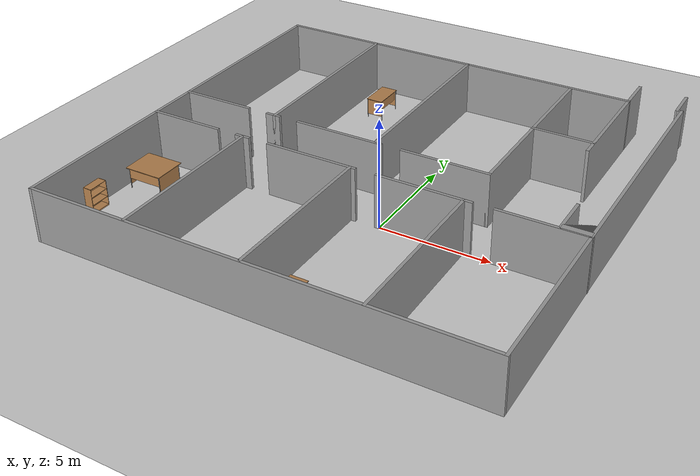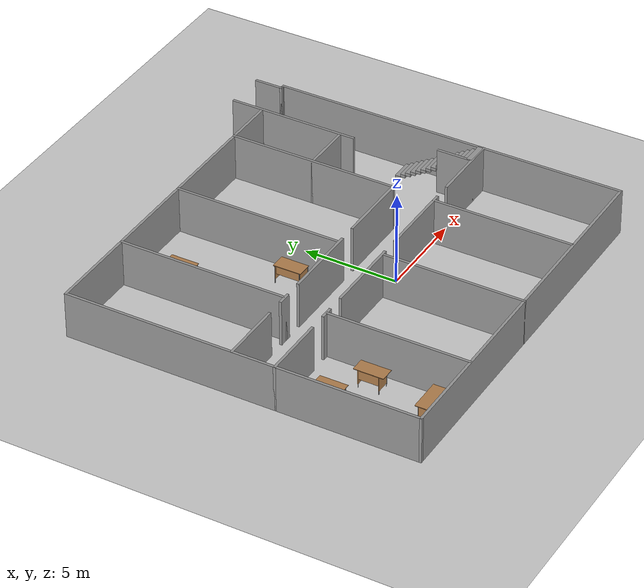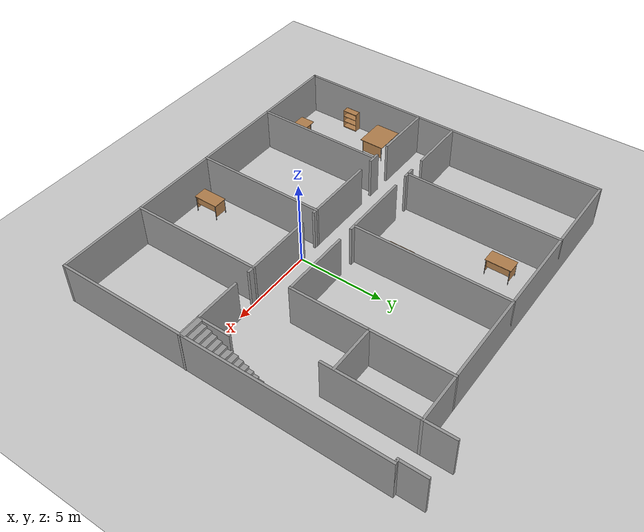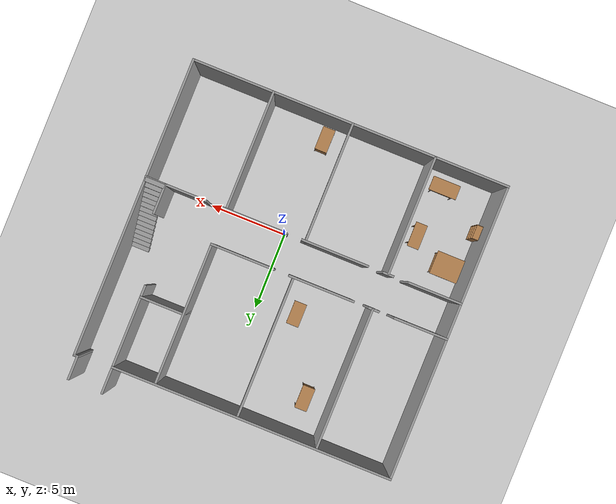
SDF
<sdf version="1.4">
 <world name="default">
  <model name="ground_plane">
   <static>1</static>
   <link name="link">
    <collision name="collision">
     <geometry><plane><normal>0 0 1</normal><size>100 100</size></plane></geometry>
     <surface><friction><ode><mu>100</mu><mu2>50</mu2></ode></friction></surface>
    </collision>
    <visual name="visual">
     <cast_shadows>0</cast_shadows>
     <geometry><plane><normal>0 0 1</normal><size>100 100</size></plane></geometry>
     <material>
      <script><uri>file://media/materials/scripts/gazebo.material</uri><name>Gazebo/Grey</name></script>
     </material>
    </visual>
    <velocity_decay><linear>0</linear><angular>0</angular></velocity_decay>
   </link>
  </model>
  <model name="teknopark">
   <link name="Stairs_0">
    <visual name="Stairs_0_Visual_0">
     <pose>8.265 4.12932 0.083333 0 -0 0</pose>
     <geometry><box><size>1.23 0.284782 0.166668</size></box></geometry>
     <material>
      <script><uri>file://media/materials/scripts/gazebo.material</uri><name>Gazebo/Grey</name></script>
     </material>
    </visual>
    <collision name="Stairs_0_Collision_0">
     <geometry><box><size>1.23 0.284782 0.166668</size></box></geometry>
     <pose>8.265 4.12932 0.083333 0 -0 0</pose>
    </collision>
    <visual name="Stairs_0_Visual_1">
     <pose>8.265 3.84454 0.25 0 -0 0</pose>
     <geometry><box><size>1.23 0.284782 0.166668</size></box></geometry>
     <material>
      <script><uri>file://media/materials/scripts/gazebo.material</uri><name>Gazebo/Grey</name></script>
     </material>
    </visual>
    <collision name="Stairs_0_Collision_1">
     <geometry><box><size>1.23 0.284782 0.166668</size></box></geometry>
     <pose>8.265 3.84454 0.25 0 -0 0</pose>
    </collision>
    <visual name="Stairs_0_Visual_2">
     <pose>8.265 3.55976 0.416667 0 -0 0</pose>
     <geometry><box><size>1.23 0.284782 0.166668</size></box></geometry>
     <material>
      <script><uri>file://media/materials/scripts/gazebo.material</uri><name>Gazebo/Grey</name></script>
     </material>
    </visual>
    <collision name="Stairs_0_Collision_2">
     <geometry><box><size>1.23 0.284782 0.166668</size></box></geometry>
     <pose>8.265 3.55976 0.416667 0 -0 0</pose>
    </collision>
    <visual name="Stairs_0_Visual_3">
     <pose>8.265 3.27498 0.583333 0 -0 0</pose>
     <geometry><box><size>1.23 0.284782 0.166668</size></box></geometry>
     <material>
      <script><uri>file://media/materials/scripts/gazebo.material</uri><name>Gazebo/Grey</name></script>
     </material>
    </visual>
    <collision name="Stairs_0_Collision_3">
     <geometry><box><size>1.23 0.284782 0.166668</size></box></geometry>
     <pose>8.265 3.27498 0.583333 0 -0 0</pose>
    </collision>
    <visual name="Stairs_0_Visual_4">
     <pose>8.265 2.9902 0.75 0 -0 0</pose>
     <geometry><box><size>1.23 0.284782 0.166668</size></box></geometry>
     <material>
      <script><uri>file://media/materials/scripts/gazebo.material</uri><name>Gazebo/Grey</name></script>
     </material>
    </visual>
    <collision name="Stairs_0_Collision_4">
     <geometry><box><size>1.23 0.284782 0.166668</size></box></geometry>
     <pose>8.265 2.9902 0.75 0 -0 0</pose>
    </collision>
    <visual name="Stairs_0_Visual_5">
     <pose>8.265 2.70542 0.916667 0 -0 0</pose>
     <geometry><box><size>1.23 0.284782 0.166668</size></box></geometry>
     <material>
      <script><uri>file://media/materials/scripts/gazebo.material</uri><name>Gazebo/Grey</name></script>
     </material>
    </visual>
    <collision name="Stairs_0_Collision_5">
     <geometry><box><size>1.23 0.284782 0.166668</size></box></geometry>
     <pose>8.265 2.70542 0.916667 0 -0 0</pose>
    </collision>
    <visual name="Stairs_0_Visual_6">
     <pose>8.265 2.42064 1.08333 0 -0 0</pose>
     <geometry><box><size>1.23 0.284782 0.166668</size></box></geometry>
     <material>
      <script><uri>file://media/materials/scripts/gazebo.material</uri><name>Gazebo/Grey</name></script>
     </material>
    </visual>
    <collision name="Stairs_0_Collision_6">
     <geometry><box><size>1.23 0.284782 0.166668</size></box></geometry>
     <pose>8.265 2.42064 1.08333 0 -0 0</pose>
    </collision>
    <visual name="Stairs_0_Visual_7">
     <pose>8.265 2.13586 1.25 0 -0 0</pose>
     <geometry><box><size>1.23 0.284782 0.166668</size></box></geometry>
     <material>
      <script><uri>file://media/materials/scripts/gazebo.material</uri><name>Gazebo/Grey</name></script>
     </material>
    </visual>
    <collision name="Stairs_0_Collision_7">
     <geometry><box><size>1.23 0.284782 0.166668</size></box></geometry>
     <pose>8.265 2.13586 1.25 0 -0 0</pose>
    </collision>
    <visual name="Stairs_0_Visual_8">
     <pose>8.265 1.85108 1.41667 0 -0 0</pose>
     <geometry><box><size>1.23 0.284782 0.166668</size></box></geometry>
     <material>
      <script><uri>file://media/materials/scripts/gazebo.material</uri><name>Gazebo/Grey</name></script>
     </material>
    </visual>
    <collision name="Stairs_0_Collision_8">
     <geometry><box><size>1.23 0.284782 0.166668</size></box></geometry>
     <pose>8.265 1.85108 1.41667 0 -0 0</pose>
    </collision>
    <visual name="Stairs_0_Visual_9">
     <pose>8.265 1.56629 1.58333 0 -0 0</pose>
     <geometry><box><size>1.23 0.284782 0.166668</size></box></geometry>
     <material>
      <script><uri>file://media/materials/scripts/gazebo.material</uri><name>Gazebo/Grey</name></script>
     </material>
    </visual>
    <collision name="Stairs_0_Collision_9">
     <geometry><box><size>1.23 0.284782 0.166668</size></box></geometry>
     <pose>8.265 1.56629 1.58333 0 -0 0</pose>
    </collision>
    <visual name="Stairs_0_Visual_10">
     <pose>8.265 1.28151 1.75 0 -0 0</pose>
     <geometry><box><size>1.23 0.284782 0.166668</size></box></geometry>
     <material>
      <script><uri>file://media/materials/scripts/gazebo.material</uri><name>Gazebo/Grey</name></script>
     </material>
    </visual>
    <collision name="Stairs_0_Collision_10">
     <geometry><box><size>1.23 0.284782 0.166668</size></box></geometry>
     <pose>8.265 1.28151 1.75 0 -0 0</pose>
    </collision>
    <visual name="Stairs_0_Visual_11">
     <pose>8.265 0.996734 1.91667 0 -0 0</pose>
     <geometry><box><size>1.23 0.284782 0.166668</size></box></geometry>
     <material>
      <script><uri>file://media/materials/scripts/gazebo.material</uri><name>Gazebo/Grey</name></script>
     </material>
    </visual>
    <collision name="Stairs_0_Collision_11">
     <geometry><box><size>1.23 0.284782 0.166668</size></box></geometry>
     <pose>8.265 0.996734 1.91667 0 -0 0</pose>
    </collision>
    <visual name="Stairs_0_Visual_12">
     <pose>8.265 0.711953 2.08333 0 -0 0</pose>
     <geometry><box><size>1.23 0.284782 0.166668</size></box></geometry>
     <material>
      <script><uri>file://media/materials/scripts/gazebo.material</uri><name>Gazebo/Grey</name></script>
     </material>
    </visual>
    <collision name="Stairs_0_Collision_12">
     <geometry><box><size>1.23 0.284782 0.166668</size></box></geometry>
     <pose>8.265 0.711953 2.08333 0 -0 0</pose>
    </collision>
    <visual name="Stairs_0_Visual_13">
     <pose>8.265 0.427173 2.25 0 -0 0</pose>
     <geometry><box><size>1.23 0.284782 0.166668</size></box></geometry>
     <material>
      <script><uri>file://media/materials/scripts/gazebo.material</uri><name>Gazebo/Grey</name></script>
     </material>
    </visual>
    <collision name="Stairs_0_Collision_13">
     <geometry><box><size>1.23 0.284782 0.166668</size></box></geometry>
     <pose>8.265 0.427173 2.25 0 -0 0</pose>
    </collision>
    <visual name="Stairs_0_Visual_14">
     <pose>8.265 0.142392 2.41667 0 -0 0</pose>
     <geometry><box><size>1.23 0.284782 0.166668</size></box></geometry>
     <material>
      <script><uri>file://media/materials/scripts/gazebo.material</uri><name>Gazebo/Grey</name></script>
     </material>
    </visual>
    <collision name="Stairs_0_Collision_14">
     <geometry><box><size>1.23 0.284782 0.166668</size></box></geometry>
     <pose>8.265 0.142392 2.41667 0 -0 0</pose>
    </collision>
    <velocity_decay><linear>0</linear><angular>0</angular></velocity_decay>
   </link>
   <link name="Wall_0">
    <collision name="Wall_0_Collision">
     <geometry><box><size>1.57 0.14 2.5</size></box></geometry>
     <pose>0 0 1.25 0 -0 0</pose>
    </collision>
    <visual name="Wall_0_Visual">
     <pose>0 0 1.25 0 -0 0</pose>
     <geometry><box><size>1.57 0.14 2.5</size></box></geometry>
     <material>
      <script><uri>file://media/materials/scripts/gazebo.material</uri><name>Gazebo/Grey</name></script>
     </material>
    </visual>
    <velocity_decay><linear>0</linear><angular>0</angular></velocity_decay>
    <pose>8.67 12.175 0 0 -0 1.5708</pose>
   </link>
   <link name="Wall_10">
    <collision name="Wall_10_Collision">
     <geometry><box><size>3.48 0.14 2.5</size></box></geometry>
     <pose>0 0 1.25 0 -0 0</pose>
    </collision>
    <visual name="Wall_10_Visual">
     <pose>0 0 1.25 0 -0 0</pose>
     <geometry><box><size>3.48 0.14 2.5</size></box></geometry>
     <material>
      <script><uri>file://media/materials/scripts/gazebo.material</uri><name>Gazebo/Grey</name></script>
     </material>
    </visual>
    <velocity_decay><linear>0</linear><angular>0</angular></velocity_decay>
    <pose>-9.69 0 0 0 -0 0</pose>
   </link>
   <link name="Wall_12">
    <collision name="Wall_12_Collision">
     <geometry><box><size>0.72 0.14 2.5</size></box></geometry>
     <pose>0 0 1.25 0 -0 0</pose>
    </collision>
    <visual name="Wall_12_Visual">
     <pose>0 0 1.25 0 -0 0</pose>
     <geometry><box><size>0.72 0.14 2.5</size></box></geometry>
     <material>
      <script><uri>file://media/materials/scripts/gazebo.material</uri><name>Gazebo/Grey</name></script>
     </material>
    </visual>
    <velocity_decay><linear>0</linear><angular>0</angular></velocity_decay>
    <pose>-6.69 0 0 0 -0 0</pose>
   </link>
   <link name="Wall_16">
    <collision name="Wall_16_Collision">
     <geometry><box><size>4.33 0.14 2.5</size></box></geometry>
     <pose>0 0 1.25 0 -0 0</pose>
    </collision>
    <visual name="Wall_16_Visual">
     <pose>0 0 1.25 0 -0 0</pose>
     <geometry><box><size>4.33 0.14 2.5</size></box></geometry>
     <material>
      <script><uri>file://media/materials/scripts/gazebo.material</uri><name>Gazebo/Grey</name></script>
     </material>
    </visual>
    <velocity_decay><linear>0</linear><angular>0</angular></velocity_decay>
    <pose>-3.265 0 0 0 -0 0</pose>
   </link>
   <link name="Wall_18">
    <collision name="Wall_18_Collision">
     <geometry><box><size>7.561 0.14 2.5</size></box></geometry>
     <pose>0 0 1.25 0 -0 0</pose>
    </collision>
    <visual name="Wall_18_Visual">
     <pose>0 0 1.25 0 -0 0</pose>
     <geometry><box><size>7.561 0.14 2.5</size></box></geometry>
     <material>
      <script><uri>file://media/materials/scripts/gazebo.material</uri><name>Gazebo/Grey</name></script>
     </material>
    </visual>
    <velocity_decay><linear>0</linear><angular>0</angular></velocity_decay>
    <pose>-6.687 -3.7695 0 0 0 -1.5708</pose>
   </link>
   <link name="Wall_2">
    <collision name="Wall_2_Collision">
     <geometry><box><size>0.35 0.14 2.5</size></box></geometry>
     <pose>0 0 1.25 0 -0 0</pose>
    </collision>
    <visual name="Wall_2_Visual">
     <pose>0 0 1.25 0 -0 0</pose>
     <geometry><box><size>0.35 0.14 2.5</size></box></geometry>
     <material>
      <script><uri>file://media/materials/scripts/gazebo.material</uri><name>Gazebo/Grey</name></script>
     </material>
    </visual>
    <velocity_decay><linear>0</linear><angular>0</angular></velocity_decay>
    <pose>8.775 11.46 0 0 -0 0</pose>
   </link>
   <link name="Wall_22">
    <collision name="Wall_22_Collision">
     <geometry><box><size>4.32 0.14 2.5</size></box></geometry>
     <pose>0 0 1.25 0 -0 0</pose>
    </collision>
    <visual name="Wall_22_Visual">
     <pose>0 0 1.25 0 -0 0</pose>
     <geometry><box><size>4.32 0.14 2.5</size></box></geometry>
     <material>
      <script><uri>file://media/materials/scripts/gazebo.material</uri><name>Gazebo/Grey</name></script>
     </material>
    </visual>
    <velocity_decay><linear>0</linear><angular>0</angular></velocity_decay>
    <pose>1.96 0 0 0 -0 0</pose>
   </link>
   <link name="Wall_24">
    <collision name="Wall_24_Collision">
     <geometry><box><size>3.971 0.14 2.5</size></box></geometry>
     <pose>0 0 1.25 0 -0 0</pose>
    </collision>
    <visual name="Wall_24_Visual">
     <pose>0 0 1.25 0 -0 0</pose>
     <geometry><box><size>3.971 0.14 2.5</size></box></geometry>
     <material>
      <script><uri>file://media/materials/scripts/gazebo.material</uri><name>Gazebo/Grey</name></script>
     </material>
    </visual>
    <velocity_decay><linear>0</linear><angular>0</angular></velocity_decay>
    <pose>6.9785 0 0 0 -0 0</pose>
   </link>
   <link name="Wall_26">
    <collision name="Wall_26_Collision">
     <geometry><box><size>1.97 0.14 2.5</size></box></geometry>
     <pose>0 0 1.25 0 -0 0</pose>
    </collision>
    <visual name="Wall_26_Visual">
     <pose>0 0 1.25 0 -0 0</pose>
     <geometry><box><size>1.97 0.14 2.5</size></box></geometry>
     <material>
      <script><uri>file://media/materials/scripts/gazebo.material</uri><name>Gazebo/Grey</name></script>
     </material>
    </visual>
    <velocity_decay><linear>0</linear><angular>0</angular></velocity_decay>
    <pose>7.65 0.915 0 0 -0 1.5708</pose>
   </link>
   <link name="Wall_28">
    <collision name="Wall_28_Collision">
     <geometry><box><size>7.67 0.14 2.5</size></box></geometry>
     <pose>0 0 1.25 0 -0 0</pose>
    </collision>
    <visual name="Wall_28_Visual">
     <pose>0 0 1.25 0 -0 0</pose>
     <geometry><box><size>7.67 0.14 2.5</size></box></geometry>
     <material>
      <script><uri>file://media/materials/scripts/gazebo.material</uri><name>Gazebo/Grey</name></script>
     </material>
    </visual>
    <velocity_decay><linear>0</linear><angular>0</angular></velocity_decay>
    <pose>-1.37 -3.765 0 0 0 -1.5708</pose>
   </link>
   <link name="Wall_30">
    <collision name="Wall_30_Collision">
     <geometry><box><size>7.67 0.14 2.5</size></box></geometry>
     <pose>0 0 1.25 0 -0 0</pose>
    </collision>
    <visual name="Wall_30_Visual">
     <pose>0 0 1.25 0 -0 0</pose>
     <geometry><box><size>7.67 0.14 2.5</size></box></geometry>
     <material>
      <script><uri>file://media/materials/scripts/gazebo.material</uri><name>Gazebo/Grey</name></script>
     </material>
    </visual>
    <velocity_decay><linear>0</linear><angular>0</angular></velocity_decay>
    <pose>3.73 -3.765 0 0 0 -1.5708</pose>
   </link>
   <link name="Wall_32">
    <collision name="Wall_32_Collision">
     <geometry><box><size>18 0.14 2.5</size></box></geometry>
     <pose>0 0 1.25 0 -0 0</pose>
    </collision>
    <visual name="Wall_32_Visual">
     <pose>0 0 1.25 0 -0 0</pose>
     <geometry><box><size>18 0.14 2.5</size></box></geometry>
     <material>
      <script><uri>file://media/materials/scripts/gazebo.material</uri><name>Gazebo/Grey</name></script>
     </material>
    </visual>
    <velocity_decay><linear>0</linear><angular>0</angular></velocity_decay>
    <pose>-2.43 11.28 0 0 -0 0</pose>
   </link>
   <link name="Wall_34">
    <collision name="Wall_34_Collision">
     <geometry><box><size>3.467 0.14 2.5</size></box></geometry>
     <pose>0 0 1.25 0 -0 0</pose>
    </collision>
    <visual name="Wall_34_Visual">
     <pose>0 0 1.25 0 -0 0</pose>
     <geometry><box><size>3.467 0.14 2.5</size></box></geometry>
     <material>
      <script><uri>file://media/materials/scripts/gazebo.material</uri><name>Gazebo/Grey</name></script>
     </material>
    </visual>
    <velocity_decay><linear>0</linear><angular>0</angular></velocity_decay>
    <pose>-9.6965 2.273 0 0 -0 0</pose>
   </link>
   <link name="Wall_38">
    <collision name="Wall_38_Collision">
     <geometry><box><size>0.72 0.14 2.5</size></box></geometry>
     <pose>0 0 1.25 0 -0 0</pose>
    </collision>
    <visual name="Wall_38_Visual">
     <pose>0 0 1.25 0 -0 0</pose>
     <geometry><box><size>0.72 0.14 2.5</size></box></geometry>
     <material>
      <script><uri>file://media/materials/scripts/gazebo.material</uri><name>Gazebo/Grey</name></script>
     </material>
    </visual>
    <velocity_decay><linear>0</linear><angular>0</angular></velocity_decay>
    <pose>-6.68 2.273 0 0 -0 0</pose>
   </link>
   <link name="Wall_4">
    <collision name="Wall_4_Collision">
     <geometry><box><size>19.13 0.14 2.5</size></box></geometry>
     <pose>0 0 1.25 0 -0 0</pose>
    </collision>
    <visual name="Wall_4_Visual">
     <pose>0 0 1.25 0 -0 0</pose>
     <geometry><box><size>19.13 0.14 2.5</size></box></geometry>
     <material>
      <script><uri>file://media/materials/scripts/gazebo.material</uri><name>Gazebo/Grey</name></script>
     </material>
    </visual>
    <velocity_decay><linear>0</linear><angular>0</angular></velocity_decay>
    <pose>8.88 1.965 0 0 0 -1.5708</pose>
   </link>
   <link name="Wall_40">
    <collision name="Wall_40_Collision">
     <geometry><box><size>4.23 0.14 2.5</size></box></geometry>
     <pose>0 0 1.25 0 -0 0</pose>
    </collision>
    <visual name="Wall_40_Visual">
     <pose>0 0 1.25 0 -0 0</pose>
     <geometry><box><size>4.23 0.14 2.5</size></box></geometry>
     <material>
      <script><uri>file://media/materials/scripts/gazebo.material</uri><name>Gazebo/Grey</name></script>
     </material>
    </visual>
    <velocity_decay><linear>0</linear><angular>0</angular></velocity_decay>
    <pose>-3.305 2.273 0 0 -0 0</pose>
   </link>
   <link name="Wall_42">
    <collision name="Wall_42_Collision">
     <geometry><box><size>4.12 0.14 2.5</size></box></geometry>
     <pose>0 0 1.25 0 -0 0</pose>
    </collision>
    <visual name="Wall_42_Visual">
     <pose>0 0 1.25 0 -0 0</pose>
     <geometry><box><size>4.12 0.14 2.5</size></box></geometry>
     <material>
      <script><uri>file://media/materials/scripts/gazebo.material</uri><name>Gazebo/Grey</name></script>
     </material>
    </visual>
    <velocity_decay><linear>0</linear><angular>0</angular></velocity_decay>
    <pose>1.77 2.273 0 0 -0 0</pose>
   </link>
   <link name="Wall_44">
    <collision name="Wall_44_Collision">
     <geometry><box><size>9.147 0.14 2.5</size></box></geometry>
     <pose>0 0 1.25 0 -0 0</pose>
    </collision>
    <visual name="Wall_44_Visual">
     <pose>0 0 1.25 0 -0 0</pose>
     <geometry><box><size>9.147 0.14 2.5</size></box></geometry>
     <material>
      <script><uri>file://media/materials/scripts/gazebo.material</uri><name>Gazebo/Grey</name></script>
     </material>
    </visual>
    <velocity_decay><linear>0</linear><angular>0</angular></velocity_decay>
    <pose>3.76 6.7765 0 0 -0 1.5708</pose>
   </link>
   <link name="Wall_46">
    <collision name="Wall_46_Collision">
     <geometry><box><size>2.88 0.14 2.5</size></box></geometry>
     <pose>0 0 1.25 0 -0 0</pose>
    </collision>
    <visual name="Wall_46_Visual">
     <pose>0 0 1.25 0 -0 0</pose>
     <geometry><box><size>2.88 0.14 2.5</size></box></geometry>
     <material>
      <script><uri>file://media/materials/scripts/gazebo.material</uri><name>Gazebo/Grey</name></script>
     </material>
    </visual>
    <velocity_decay><linear>0</linear><angular>0</angular></velocity_decay>
    <pose>5.13 6.77 0 0 -0 0</pose>
   </link>
   <link name="Wall_48">
    <collision name="Wall_48_Collision">
     <geometry><box><size>7.003 0.14 2.5</size></box></geometry>
     <pose>0 0 1.25 0 -0 0</pose>
    </collision>
    <visual name="Wall_48_Visual">
     <pose>0 0 1.25 0 -0 0</pose>
     <geometry><box><size>7.003 0.14 2.5</size></box></geometry>
     <material>
      <script><uri>file://media/materials/scripts/gazebo.material</uri><name>Gazebo/Grey</name></script>
     </material>
    </visual>
    <velocity_decay><linear>0</linear><angular>0</angular></velocity_decay>
    <pose>6.5 9.5015 0 0 -0 1.5708</pose>
   </link>
   <link name="Wall_50">
    <collision name="Wall_50_Collision">
     <geometry><box><size>9.147 0.14 2.5</size></box></geometry>
     <pose>0 0 1.25 0 -0 0</pose>
    </collision>
    <visual name="Wall_50_Visual">
     <pose>0 0 1.25 0 -0 0</pose>
     <geometry><box><size>9.147 0.14 2.5</size></box></geometry>
     <material>
      <script><uri>file://media/materials/scripts/gazebo.material</uri><name>Gazebo/Grey</name></script>
     </material>
    </visual>
    <velocity_decay><linear>0</linear><angular>0</angular></velocity_decay>
    <pose>-6.6 6.7765 0 0 -0 1.5708</pose>
   </link>
   <link name="Wall_52">
    <collision name="Wall_52_Collision">
     <geometry><box><size>9.147 0.14 2.5</size></box></geometry>
     <pose>0 0 1.25 0 -0 0</pose>
    </collision>
    <visual name="Wall_52_Visual">
     <pose>0 0 1.25 0 -0 0</pose>
     <geometry><box><size>9.147 0.14 2.5</size></box></geometry>
     <material>
      <script><uri>file://media/materials/scripts/gazebo.material</uri><name>Gazebo/Grey</name></script>
     </material>
    </visual>
    <velocity_decay><linear>0</linear><angular>0</angular></velocity_decay>
    <pose>-1.52 6.7765 0 0 -0 1.5708</pose>
   </link>
   <link name="Wall_6">
    <collision name="Wall_6_Collision">
     <geometry><box><size>20.38 0.14 2.5</size></box></geometry>
     <pose>0 0 1.25 0 -0 0</pose>
    </collision>
    <visual name="Wall_6_Visual">
     <pose>0 0 1.25 0 -0 0</pose>
     <geometry><box><size>20.38 0.14 2.5</size></box></geometry>
     <material>
      <script><uri>file://media/materials/scripts/gazebo.material</uri><name>Gazebo/Grey</name></script>
     </material>
    </visual>
    <velocity_decay><linear>0</linear><angular>0</angular></velocity_decay>
    <pose>-1.24 -7.53 0 0 -0 3.14159</pose>
   </link>
   <link name="Wall_8">
    <collision name="Wall_8_Collision">
     <geometry><box><size>18.95 0.14 2.5</size></box></geometry>
     <pose>0 0 1.25 0 -0 0</pose>
    </collision>
    <visual name="Wall_8_Visual">
     <pose>0 0 1.25 0 -0 0</pose>
     <geometry><box><size>18.95 0.14 2.5</size></box></geometry>
     <material>
      <script><uri>file://media/materials/scripts/gazebo.material</uri><name>Gazebo/Grey</name></script>
     </material>
    </visual>
    <velocity_decay><linear>0</linear><angular>0</angular></velocity_decay>
    <pose>-11.36 1.875 0 0 -0 1.5708</pose>
   </link>
   <static>1</static>
  </model>
  <model name="table_0">
   <static>1</static>
   <link name="link">
    <collision name="surface">
     <pose>0 0 1 0 -0 0</pose>
     <geometry><box><size>1.5 0.8 0.03</size></box></geometry>
    </collision>
    <visual name="visual1">
     <pose>0 0 1 0 -0 0</pose>
     <geometry><box><size>1.5 0.8 0.03</size></box></geometry>
     <material>
      <script><uri>file://media/materials/scripts/gazebo.material</uri><name>Gazebo/Wood</name></script>
     </material>
    </visual>
    <collision name="surface_1">
     <pose>0 -0.3 0.74 1.57 0 1.57</pose>
     <geometry><box><size>0.03 0.5 1.3</size></box></geometry>
    </collision>
    <visual name="visual_1">
     <pose>0 -0.3 0.74 1.57 0 1.57</pose>
     <geometry><box><size>0.03 0.5 1.3</size></box></geometry>
     <material>
      <script><uri>file://media/materials/scripts/gazebo.material</uri><name>Gazebo/Wood</name></script>
     </material>
    </visual>
    <collision name="surface_2">
     <pose>-0.68 0 0.6 0 0 0</pose>
     <geometry><box><size>0.03 0.75 0.8</size></box></geometry>
    </collision>
    <visual name="visual_2">
     <pose>-0.68 0 0.6 0 0 0</pose>
     <geometry><box><size>0.03 0.75 0.8</size></box></geometry>
     <material>
      <script><uri>file://media/materials/scripts/gazebo.material</uri><name>Gazebo/Wood</name></script>
     </material>
    </visual>
    <collision name="surface_3">
     <pose>0.68 0 0.6 0 0 0</pose>
     <geometry><box><size>0.03 0.75 0.8</size></box></geometry>
    </collision>
    <visual name="visual_3">
     <pose>0.68 0 0.6 0 0 0</pose>
     <geometry><box><size>0.03 0.75 0.8</size></box></geometry>
     <material>
      <script><uri>file://media/materials/scripts/gazebo.material</uri><name>Gazebo/Wood</name></script>
     </material>
    </visual>
    <collision name="front_left_leg">
     <pose>0.68 0.38 0.5 0 -0 0</pose>
     <geometry><cylinder><radius>0.02</radius><length>1</length></cylinder></geometry>
    </collision>
    <visual name="front_left_leg">
     <pose>0.68 0.38 0.5 0 -0 0</pose>
     <geometry><cylinder><radius>0.02</radius><length>1</length></cylinder></geometry>
     <material>
      <script><uri>file://media/materials/scripts/gazebo.material</uri><name>Gazebo/Grey</name></script>
     </material>
    </visual>
    <collision name="front_right_leg">
     <pose>0.68 -0.38 0.5 0 -0 0</pose>
     <geometry><cylinder><radius>0.02</radius><length>1</length></cylinder></geometry>
    </collision>
    <visual name="front_right_leg">
     <pose>0.68 -0.38 0.5 0 -0 0</pose>
     <geometry><cylinder><radius>0.02</radius><length>1</length></cylinder></geometry>
     <material>
      <script><uri>file://media/materials/scripts/gazebo.material</uri><name>Gazebo/Grey</name></script>
     </material>
    </visual>
    <collision name="back_right_leg">
     <pose>-0.68 -0.38 0.5 0 -0 0</pose>
     <geometry><cylinder><radius>0.02</radius><length>1</length></cylinder></geometry>
    </collision>
    <visual name="back_right_leg">
     <pose>-0.68 -0.38 0.5 0 -0 0</pose>
     <geometry><cylinder><radius>0.02</radius><length>1</length></cylinder></geometry>
     <material>
      <script><uri>file://media/materials/scripts/gazebo.material</uri><name>Gazebo/Grey</name></script>
     </material>
    </visual>
    <collision name="back_left_leg">
     <pose>-0.68 0.38 0.5 0 -0 0</pose>
     <geometry><cylinder><radius>0.02</radius><length>1</length></cylinder></geometry>
    </collision>
    <visual name="back_left_leg">
     <pose>-0.68 0.38 0.5 0 -0 0</pose>
     <geometry><cylinder><radius>0.02</radius><length>1</length></cylinder></geometry>
     <material>
      <script><uri>file://media/materials/scripts/gazebo.material</uri><name>Gazebo/Grey</name></script>
     </material>
    </visual>
    <velocity_decay><linear>0</linear><angular>0</angular></velocity_decay>
   </link>
   <pose>-0.14 -6.398 0 0 -0 1.57</pose>
  </model>
  <model name="table_2">
   <static>1</static>
   <link name="link">
    <collision name="surface">
     <pose>0 0 1 0 -0 0</pose>
     <geometry><box><size>1.8 1.5 0.03</size></box></geometry>
    </collision>
    <visual name="visual1">
     <pose>0 0 1 0 -0 0</pose>
     <geometry><box><size>1.8 1.5 0.03</size></box></geometry>
     <material>
      <script><uri>file://media/materials/scripts/gazebo.material</uri><name>Gazebo/Wood</name></script>
     </material>
    </visual>
    <collision name="surface_1">
     <pose>0 -0.65 0.74 1.57 0 1.57</pose>
     <geometry><box><size>.03 0.5 1.6</size></box></geometry>
    </collision>
    <visual name="visual_1">
     <pose>0 -0.65 0.74 1.57 0 1.57</pose>
     <geometry><box><size>0.03 0.5 1.6</size></box></geometry>
     <material>
      <script><uri>file://media/materials/scripts/gazebo.material</uri><name>Gazebo/Wood</name></script>
     </material>
    </visual>
    <collision name="surface_2">
     <pose>-0.8 0 0.6 0 0 0</pose>
     <geometry><box><size>0.03 1.3 0.8</size></box></geometry>
    </collision>
    <visual name="visual_2">
     <pose>-0.8 0 0.6 0 0 0</pose>
     <geometry><box><size>0.03 1.3 0.8</size></box></geometry>
     <material>
      <script><uri>file://media/materials/scripts/gazebo.material</uri><name>Gazebo/Wood</name></script>
     </material>
    </visual>
    <collision name="surface_3">
     <pose>0.8 0 0.6 0 0 0</pose>
     <geometry><box><size>0.03 1.3 0.8</size></box></geometry>
    </collision>
    <visual name="visual_3">
     <pose>0.8 0 0.6 0 0 0</pose>
     <geometry><box><size>0.03 1.3 0.8</size></box></geometry>
     <material>
      <script><uri>file://media/materials/scripts/gazebo.material</uri><name>Gazebo/Wood</name></script>
     </material>
    </visual>
    <collision name="front_left_leg">
     <pose>0.8 0.65 0.5 0 -0 0</pose>
     <geometry><cylinder><radius>0.02</radius><length>1</length></cylinder></geometry>
    </collision>
    <visual name="front_left_leg">
     <pose>0.8 0.65 0.5 0 -0 0</pose>
     <geometry><cylinder><radius>0.02</radius><length>1</length></cylinder></geometry>
     <material>
      <script><uri>file://media/materials/scripts/gazebo.material</uri><name>Gazebo/Grey</name></script>
     </material>
    </visual>
    <collision name="front_right_leg">
     <pose>0.8 -0.65 0.5 0 -0 0</pose>
     <geometry><cylinder><radius>0.02</radius><length>1</length></cylinder></geometry>
    </collision>
    <visual name="front_right_leg">
     <pose>0.8 -0.65 0.5 0 -0 0</pose>
     <geometry><cylinder><radius>0.02</radius><length>1</length></cylinder></geometry>
     <material>
      <script><uri>file://media/materials/scripts/gazebo.material</uri><name>Gazebo/Grey</name></script>
     </material>
    </visual>
    <collision name="back_right_leg">
     <pose>-0.8 -0.65 0.5 0 -0 0</pose>
     <geometry><cylinder><radius>0.02</radius><length>1</length></cylinder></geometry>
    </collision>
    <visual name="back_right_leg">
     <pose>-0.8 -0.65 0.5 0 -0 0</pose>
     <geometry><cylinder><radius>0.02</radius><length>1</length></cylinder></geometry>
     <material>
      <script><uri>file://media/materials/scripts/gazebo.material</uri><name>Gazebo/Grey</name></script>
     </material>
    </visual>
    <collision name="back_left_leg">
     <pose>-0.8 0.65 0.5 0 -0 0</pose>
     <geometry><cylinder><radius>0.02</radius><length>1</length></cylinder></geometry>
    </collision>
    <visual name="back_left_leg">
     <pose>-0.8 0.65 0.5 0 -0 0</pose>
     <geometry><cylinder><radius>0.02</radius><length>1</length></cylinder></geometry>
     <material>
      <script><uri>file://media/materials/scripts/gazebo.material</uri><name>Gazebo/Grey</name></script>
     </material>
    </visual>
    <velocity_decay><linear>0</linear><angular>0</angular></velocity_decay>
   </link>
   <pose>-10.16 -1.88 0 0 -0 0</pose>
  </model>
  <model name="table_3">
   <static>1</static>
   <link name="link">
    <collision name="surface">
     <pose>0 0 1 0 0 0</pose>
     <geometry><box><size>1.6 0.75 0.03</size></box></geometry>
    </collision>
    <visual name="visual1">
     <pose>0 0 1 0 -0 0</pose>
     <geometry><box><size>1.6 0.75 0.03</size></box></geometry>
     <material>
      <script><uri>file://media/materials/scripts/gazebo.material</uri><name>Gazebo/Wood</name></script>
     </material>
    </visual>
    <collision name="surface_1">
     <pose>0 -0.35 0.74 1.57 0 1.57</pose>
     <geometry><box><size>0.03 0.5 1.1</size></box></geometry>
    </collision>
    <visual name="visual_1">
     <pose>0 -0.35 0.74 1.57 0 1.57</pose>
     <geometry><box><size>0.03 0.5 1.1</size></box></geometry>
     <material>
      <script><uri>file://media/materials/scripts/gazebo.material</uri><name>Gazebo/Wood</name></script>
     </material>
    </visual>
    <collision name="surface_2">
     <pose>-0.55 0 0.6 0 0 0</pose>
     <geometry><box><size>0.03 0.75 0.8</size></box></geometry>
    </collision>
    <visual name="visual_2">
     <pose>-0.55 0 0.6 0 0 0</pose>
     <geometry><box><size>0.03 0.75 0.8</size></box></geometry>
     <material>
      <script><uri>file://media/materials/scripts/gazebo.material</uri><name>Gazebo/Wood</name></script>
     </material>
    </visual>
    <collision name="surface_3">
     <pose>0.55 0 0.6 0 0 0</pose>
     <geometry><box><size>0.03 0.75 0.8</size></box></geometry>
    </collision>
    <visual name="visual_3">
     <pose>0.55 0 0.6 0 0 0</pose>
     <geometry><box><size>0.03 0.75 0.8</size></box></geometry>
     <material>
      <script><uri>file://media/materials/scripts/gazebo.material</uri><name>Gazebo/Wood</name></script>
     </material>
    </visual>
    <collision name="front_left_leg">
     <pose>0.55 0.35 0.5 0 -0 0</pose>
     <geometry><cylinder><radius>0.02</radius><length>1</length></cylinder></geometry>
    </collision>
    <visual name="front_left_leg">
     <pose>0.55 0.35 0.5 0 -0 0</pose>
     <geometry><cylinder><radius>0.02</radius><length>1</length></cylinder></geometry>
     <material>
      <script><uri>file://media/materials/scripts/gazebo.material</uri><name>Gazebo/Grey</name></script>
     </material>
    </visual>
    <collision name="front_right_leg">
     <pose>0.55 -0.35 0.5 0 -0 0</pose>
     <geometry><cylinder><radius>0.02</radius><length>1</length></cylinder></geometry>
    </collision>
    <visual name="front_right_leg">
     <pose>0.55 -0.35 0.5 0 -0 0</pose>
     <geometry><cylinder><radius>0.02</radius><length>1</length></cylinder></geometry>
     <material>
      <script><uri>file://media/materials/scripts/gazebo.material</uri><name>Gazebo/Grey</name></script>
     </material>
    </visual>
    <collision name="back_right_leg">
     <pose>-0.55 -0.35 0.5 0 -0 0</pose>
     <geometry><cylinder><radius>0.02</radius><length>1</length></cylinder></geometry>
    </collision>
    <visual name="back_right_leg">
     <pose>-0.55 -0.35 0.5 0 -0 0</pose>
     <geometry><cylinder><radius>0.02</radius><length>1</length></cylinder></geometry>
     <material>
      <script><uri>file://media/materials/scripts/gazebo.material</uri><name>Gazebo/Grey</name></script>
     </material>
    </visual>
    <collision name="back_left_leg">
     <pose>-0.55 0.35 0.5 0 -0 0</pose>
     <geometry><cylinder><radius>0.02</radius><length>1</length></cylinder></geometry>
    </collision>
    <visual name="back_left_leg">
     <pose>-0.55 0.35 0.5 0 -0 0</pose>
     <geometry><cylinder><radius>0.02</radius><length>1</length></cylinder></geometry>
     <material>
      <script><uri>file://media/materials/scripts/gazebo.material</uri><name>Gazebo/Grey</name></script>
     </material>
    </visual>
    <velocity_decay><linear>0</linear><angular>0</angular></velocity_decay>
   </link>
   <pose>-7.705 -3 0 0 -0 -1.57</pose>
  </model>
  <model name="table_4">
   <static>1</static>
   <link name="link">
    <collision name="surface">
     <pose>0 0 1 0 -0 0</pose>
     <geometry><box><size>1.8 0.9 0.03</size></box></geometry>
    </collision>
    <visual name="visual1">
     <pose>0 0 1 0 -0 0</pose>
     <geometry><box><size>1.8 0.9 0.03</size></box></geometry>
     <material>
      <script><uri>file://media/materials/scripts/gazebo.material</uri><name>Gazebo/Wood</name></script>
     </material>
    </visual>
    <collision name="surface_1">
     <pose>0 0.35 0.74 1.57 0 1.57</pose>
     <geometry><box><size>0.03 0.5 1.3</size></box></geometry>
    </collision>
    <visual name="visual_1">
     <pose>0 0.35 0.74 1.57 0 1.57</pose>
     <geometry><box><size>0.03 0.5 1.3</size></box></geometry>
     <material>
      <script><uri>file://media/materials/scripts/gazebo.material</uri><name>Gazebo/Wood</name></script>
     </material>
    </visual>
    <collision name="surface_2">
     <pose>-0.68 0 0.6 0 0 0</pose>
     <geometry><box><size>0.03 0.75 0.8</size></box></geometry>
    </collision>
    <visual name="visual_2">
     <pose>-0.68 0 0.6 0 0 0</pose>
     <geometry><box><size>0.03 0.75 0.8</size></box></geometry>
     <material>
      <script><uri>file://media/materials/scripts/gazebo.material</uri><name>Gazebo/Wood</name></script>
     </material>
    </visual>
    <collision name="surface_3">
     <pose>0.68 0 0.6 0 0 0</pose>
     <geometry><box><size>0.03 0.75 0.8</size></box></geometry>
    </collision>
    <visual name="visual_3">
     <pose>0.68 0 0.6 0 0 0</pose>
     <geometry><box><size>0.03 0.75 0.8</size></box></geometry>
     <material>
      <script><uri>file://media/materials/scripts/gazebo.material</uri><name>Gazebo/Wood</name></script>
     </material>
    </visual>
    <collision name="front_left_leg">
     <pose>0.68 0.38 0.5 0 -0 0</pose>
     <geometry><cylinder><radius>0.02</radius><length>1</length></cylinder></geometry>
    </collision>
    <visual name="front_left_leg">
     <pose>0.68 0.38 0.5 0 -0 0</pose>
     <geometry><cylinder><radius>0.02</radius><length>1</length></cylinder></geometry>
     <material>
      <script><uri>file://media/materials/scripts/gazebo.material</uri><name>Gazebo/Grey</name></script>
     </material>
    </visual>
    <collision name="front_right_leg">
     <pose>0.68 -0.38 0.5 0 -0 0</pose>
     <geometry><cylinder><radius>0.02</radius><length>1</length></cylinder></geometry>
    </collision>
    <visual name="front_right_leg">
     <pose>0.68 -0.38 0.5 0 -0 0</pose>
     <geometry><cylinder><radius>0.02</radius><length>1</length></cylinder></geometry>
     <material>
      <script><uri>file://media/materials/scripts/gazebo.material</uri><name>Gazebo/Grey</name></script>
     </material>
    </visual>
    <collision name="back_right_leg">
     <pose>-0.68 -0.38 0.5 0 -0 0</pose>
     <geometry><cylinder><radius>0.02</radius><length>1</length></cylinder></geometry>
    </collision>
    <visual name="back_right_leg">
     <pose>-0.68 -0.38 0.5 0 -0 0</pose>
     <geometry><cylinder><radius>0.02</radius><length>1</length></cylinder></geometry>
     <material>
      <script><uri>file://media/materials/scripts/gazebo.material</uri><name>Gazebo/Grey</name></script>
     </material>
    </visual>
    <collision name="back_left_leg">
     <pose>-0.68 0.38 0.5 0 -0 0</pose>
     <geometry><cylinder><radius>0.02</radius><length>1</length></cylinder></geometry>
    </collision>
    <visual name="back_left_leg">
     <pose>-0.68 0.38 0.5 0 -0 0</pose>
     <geometry><cylinder><radius>0.02</radius><length>1</length></cylinder></geometry>
     <material>
      <script><uri>file://media/materials/scripts/gazebo.material</uri><name>Gazebo/Grey</name></script>
     </material>
    </visual>
    <velocity_decay><linear>0</linear><angular>0</angular></velocity_decay>
   </link>
   <pose>-8.17 -6.4 0 0 -0 0</pose>
  </model>
  <model name="bookshelf_4">
   <static>1</static>
   <link name="link">
    <inertial><mass>1</mass></inertial>
    <collision name="back">
     <pose>0 0.005 0.6 0 -0 0</pose>
     <geometry><box><size>0.9 0.01 1.2</size></box></geometry>
    </collision>
    <visual name="visual1">
     <pose>0 0.005 0.6 0 -0 0</pose>
     <geometry><box><size>0.9 0.01 1.2</size></box></geometry>
     <material>
      <script><uri>file://media/materials/scripts/gazebo.material</uri><name>Gazebo/Wood</name></script>
     </material>
    </visual>
    <collision name="left_side">
     <pose>0.45 -0.195 0.6 0 -0 0</pose>
     <geometry><box><size>0.02 0.4 1.2</size></box></geometry>
    </collision>
    <visual name="visual2">
     <pose>0.45 -0.195 0.6 0 -0 0</pose>
     <geometry><box><size>0.02 0.4 1.2</size></box></geometry>
     <material>
      <script><uri>file://media/materials/scripts/gazebo.material</uri><name>Gazebo/Wood</name></script>
     </material>
    </visual>
    <collision name="right_side">
     <pose>-0.45 -0.195 0.6 0 -0 0</pose>
     <geometry><box><size>0.02 0.4 1.2</size></box></geometry>
    </collision>
    <visual name="visual3">
     <pose>-0.45 -0.195 0.6 0 -0 0</pose>
     <geometry><box><size>0.02 0.4 1.2</size></box></geometry>
     <material>
      <script><uri>file://media/materials/scripts/gazebo.material</uri><name>Gazebo/Wood</name></script>
     </material>
    </visual>
    <collision name="bottom">
     <pose>0 -0.195 0.03 0 -0 0</pose>
     <geometry><box><size>0.88 0.4 0.06</size></box></geometry>
    </collision>
    <visual name="visual4">
     <pose>0 -0.195 0.03 0 -0 0</pose>
     <geometry><box><size>0.88 0.4 0.06</size></box></geometry>
     <material>
      <script><uri>file://media/materials/scripts/gazebo.material</uri><name>Gazebo/Wood</name></script>
     </material>
    </visual>
    <collision name="top">
     <pose>0 -0.195 1.19 0 -0 0</pose>
     <geometry><box><size>0.88 0.4 0.02</size></box></geometry>
    </collision>
    <visual name="visual5">
     <pose>0 -0.195 1.19 0 -0 0</pose>
     <geometry><box><size>0.88 0.4 0.02</size></box></geometry>
     <material>
      <script><uri>file://media/materials/scripts/gazebo.material</uri><name>Gazebo/Wood</name></script>
     </material>
    </visual>
    <collision name="low_shelf">
     <pose>0 -0.195 0.43 0 -0 0</pose>
     <geometry><box><size>0.88 0.4 0.02</size></box></geometry>
    </collision>
    <visual name="visual6">
     <pose>0 -0.195 0.43 0 -0 0</pose>
     <geometry><box><size>0.88 0.4 0.02</size></box></geometry>
     <material>
      <script><uri>file://media/materials/scripts/gazebo.material</uri><name>Gazebo/Wood</name></script>
     </material>
    </visual>
    <collision name="high_shelf">
     <pose>0 -0.195 0.8 0 -0 0</pose>
     <geometry><box><size>0.88 0.4 0.02</size></box></geometry>
    </collision>
    <visual name="visual7">
     <pose>0 -0.195 0.8 0 -0 0</pose>
     <geometry><box><size>0.88 0.4 0.02</size></box></geometry>
     <material>
      <script><uri>file://media/materials/scripts/gazebo.material</uri><name>Gazebo/Wood</name></script>
     </material>
    </visual>
    <velocity_decay><linear>0</linear><angular>0</angular></velocity_decay>
   </link>
   <pose>-11.258 -4.547 0 0 -0 1.57</pose>
  </model>
  <model name="table_5">
   <static>1</static>
   <link name="link">
    <collision name="surface">
     <pose>0 0 1 0 -0 0</pose>
     <geometry><box><size>1.5 0.8 0.03</size></box></geometry>
    </collision>
    <visual name="visual1">
     <pose>0 0 1 0 -0 0</pose>
     <geometry><box><size>1.5 0.8 0.03</size></box></geometry>
     <material>
      <script><uri>file://media/materials/scripts/gazebo.material</uri><name>Gazebo/Wood</name></script>
     </material>
    </visual>
    <collision name="surface_1">
     <pose>0 -0.3 0.74 1.57 0 1.57</pose>
     <geometry><box><size>0.03 0.5 1.3</size></box></geometry>
    </collision>
    <visual name="visual_1">
     <pose>0 -0.3 0.74 1.57 0 1.57</pose>
     <geometry><box><size>0.03 0.5 1.3</size></box></geometry>
     <material>
      <script><uri>file://media/materials/scripts/gazebo.material</uri><name>Gazebo/Wood</name></script>
     </material>
    </visual>
    <collision name="surface_2">
     <pose>-0.68 0 0.6 0 0 0</pose>
     <geometry><box><size>0.03 0.75 0.8</size></box></geometry>
    </collision>
    <visual name="visual_2">
     <pose>-0.68 0 0.6 0 0 0</pose>
     <geometry><box><size>0.03 0.75 0.8</size></box></geometry>
     <material>
      <script><uri>file://media/materials/scripts/gazebo.material</uri><name>Gazebo/Wood</name></script>
     </material>
    </visual>
    <collision name="surface_3">
     <pose>0.68 0 0.6 0 0 0</pose>
     <geometry><box><size>0.03 0.75 0.8</size></box></geometry>
    </collision>
    <visual name="visual_3">
     <pose>0.68 0 0.6 0 0 0</pose>
     <geometry><box><size>0.03 0.75 0.8</size></box></geometry>
     <material>
      <script><uri>file://media/materials/scripts/gazebo.material</uri><name>Gazebo/Wood</name></script>
     </material>
    </visual>
    <collision name="front_left_leg">
     <pose>0.68 0.38 0.5 0 -0 0</pose>
     <geometry><cylinder><radius>0.02</radius><length>1</length></cylinder></geometry>
    </collision>
    <visual name="front_left_leg">
     <pose>0.68 0.38 0.5 0 -0 0</pose>
     <geometry><cylinder><radius>0.02</radius><length>1</length></cylinder></geometry>
     <material>
      <script><uri>file://media/materials/scripts/gazebo.material</uri><name>Gazebo/Grey</name></script>
     </material>
    </visual>
    <collision name="front_right_leg">
     <pose>0.68 -0.38 0.5 0 -0 0</pose>
     <geometry><cylinder><radius>0.02</radius><length>1</length></cylinder></geometry>
    </collision>
    <visual name="front_right_leg">
     <pose>0.68 -0.38 0.5 0 -0 0</pose>
     <geometry><cylinder><radius>0.02</radius><length>1</length></cylinder></geometry>
     <material>
      <script><uri>file://media/materials/scripts/gazebo.material</uri><name>Gazebo/Grey</name></script>
     </material>
    </visual>
    <collision name="back_right_leg">
     <pose>-0.68 -0.38 0.5 0 -0 0</pose>
     <geometry><cylinder><radius>0.02</radius><length>1</length></cylinder></geometry>
    </collision>
    <visual name="back_right_leg">
     <pose>-0.68 -0.38 0.5 0 -0 0</pose>
     <geometry><cylinder><radius>0.02</radius><length>1</length></cylinder></geometry>
     <material>
      <script><uri>file://media/materials/scripts/gazebo.material</uri><name>Gazebo/Grey</name></script>
     </material>
    </visual>
    <collision name="back_left_leg">
     <pose>-0.68 0.38 0.5 0 -0 0</pose>
     <geometry><cylinder><radius>0.02</radius><length>1</length></cylinder></geometry>
    </collision>
    <visual name="back_left_leg">
     <pose>-0.68 0.38 0.5 0 -0 0</pose>
     <geometry><cylinder><radius>0.02</radius><length>1</length></cylinder></geometry>
     <material>
      <script><uri>file://media/materials/scripts/gazebo.material</uri><name>Gazebo/Grey</name></script>
     </material>
    </visual>
    <velocity_decay><linear>0</linear><angular>0</angular></velocity_decay>
   </link>
   <pose>-5 9 0 0 -0 1.57</pose>
  </model>
  <model name="table_6">
   <static>1</static>
   <link name="link">
    <collision name="surface">
     <pose>0 0 1 0 -0 0</pose>
     <geometry><box><size>1.5 0.8 0.03</size></box></geometry>
    </collision>
    <visual name="visual1">
     <pose>0 0 1 0 -0 0</pose>
     <geometry><box><size>1.5 0.8 0.03</size></box></geometry>
     <material>
      <script><uri>file://media/materials/scripts/gazebo.material</uri><name>Gazebo/Wood</name></script>
     </material>
    </visual>
    <collision name="surface_1">
     <pose>0 -0.3 0.74 1.57 0 1.57</pose>
     <geometry><box><size>0.03 0.5 1.3</size></box></geometry>
    </collision>
    <visual name="visual_1">
     <pose>0 -0.3 0.74 1.57 0 1.57</pose>
     <geometry><box><size>0.03 0.5 1.3</size></box></geometry>
     <material>
      <script><uri>file://media/materials/scripts/gazebo.material</uri><name>Gazebo/Wood</name></script>
     </material>
    </visual>
    <collision name="surface_2">
     <pose>-0.68 0 0.6 0 0 0</pose>
     <geometry><box><size>0.03 0.75 0.8</size></box></geometry>
    </collision>
    <visual name="visual_2">
     <pose>-0.68 0 0.6 0 0 0</pose>
     <geometry><box><size>0.03 0.75 0.8</size></box></geometry>
     <material>
      <script><uri>file://media/materials/scripts/gazebo.material</uri><name>Gazebo/Wood</name></script>
     </material>
    </visual>
    <collision name="surface_3">
     <pose>0.68 0 0.6 0 0 0</pose>
     <geometry><box><size>0.03 0.75 0.8</size></box></geometry>
    </collision>
    <visual name="visual_3">
     <pose>0.68 0 0.6 0 0 0</pose>
     <geometry><box><size>0.03 0.75 0.8</size></box></geometry>
     <material>
      <script><uri>file://media/materials/scripts/gazebo.material</uri><name>Gazebo/Wood</name></script>
     </material>
    </visual>
    <collision name="front_left_leg">
     <pose>0.68 0.38 0.5 0 -0 0</pose>
     <geometry><cylinder><radius>0.02</radius><length>1</length></cylinder></geometry>
    </collision>
    <visual name="front_left_leg">
     <pose>0.68 0.38 0.5 0 -0 0</pose>
     <geometry><cylinder><radius>0.02</radius><length>1</length></cylinder></geometry>
     <material>
      <script><uri>file://media/materials/scripts/gazebo.material</uri><name>Gazebo/Grey</name></script>
     </material>
    </visual>
    <collision name="front_right_leg">
     <pose>0.68 -0.38 0.5 0 -0 0</pose>
     <geometry><cylinder><radius>0.02</radius><length>1</length></cylinder></geometry>
    </collision>
    <visual name="front_right_leg">
     <pose>0.68 -0.38 0.5 0 -0 0</pose>
     <geometry><cylinder><radius>0.02</radius><length>1</length></cylinder></geometry>
     <material>
      <script><uri>file://media/materials/scripts/gazebo.material</uri><name>Gazebo/Grey</name></script>
     </material>
    </visual>
    <collision name="back_right_leg">
     <pose>-0.68 -0.38 0.5 0 -0 0</pose>
     <geometry><cylinder><radius>0.02</radius><length>1</length></cylinder></geometry>
    </collision>
    <visual name="back_right_leg">
     <pose>-0.68 -0.38 0.5 0 -0 0</pose>
     <geometry><cylinder><radius>0.02</radius><length>1</length></cylinder></geometry>
     <material>
      <script><uri>file://media/materials/scripts/gazebo.material</uri><name>Gazebo/Grey</name></script>
     </material>
    </visual>
    <collision name="back_left_leg">
     <pose>-0.68 0.38 0.5 0 -0 0</pose>
     <geometry><cylinder><radius>0.02</radius><length>1</length></cylinder></geometry>
    </collision>
    <visual name="back_left_leg">
     <pose>-0.68 0.38 0.5 0 -0 0</pose>
     <geometry><cylinder><radius>0.02</radius><length>1</length></cylinder></geometry>
     <material>
      <script><uri>file://media/materials/scripts/gazebo.material</uri><name>Gazebo/Grey</name></script>
     </material>
    </visual>
    <velocity_decay><linear>0</linear><angular>0</angular></velocity_decay>
   </link>
   <pose>-2.557 4.327 0 0 -0 -1.57</pose>
  </model>
 </world>
</sdf>
